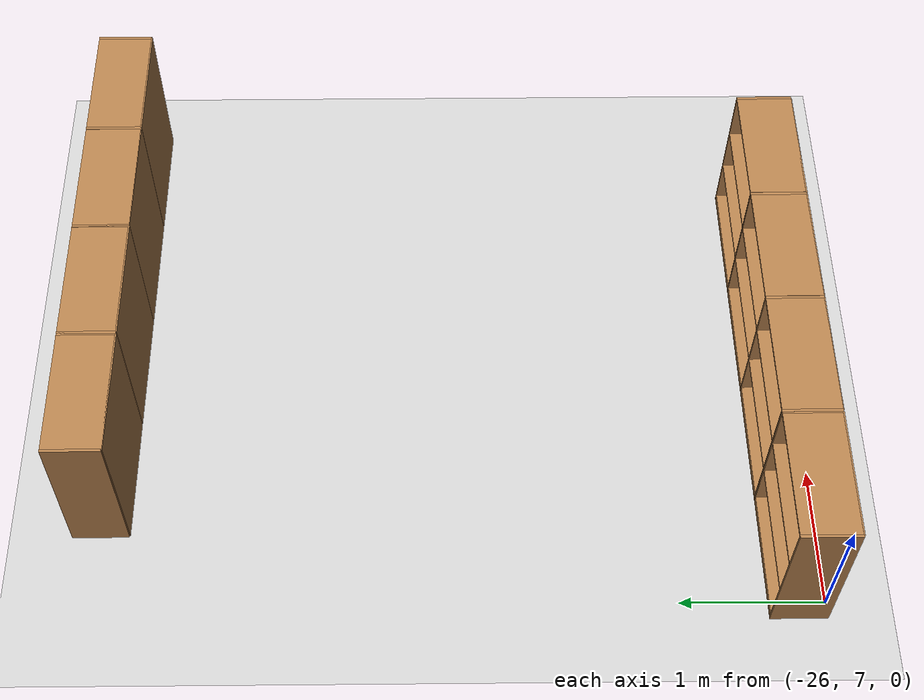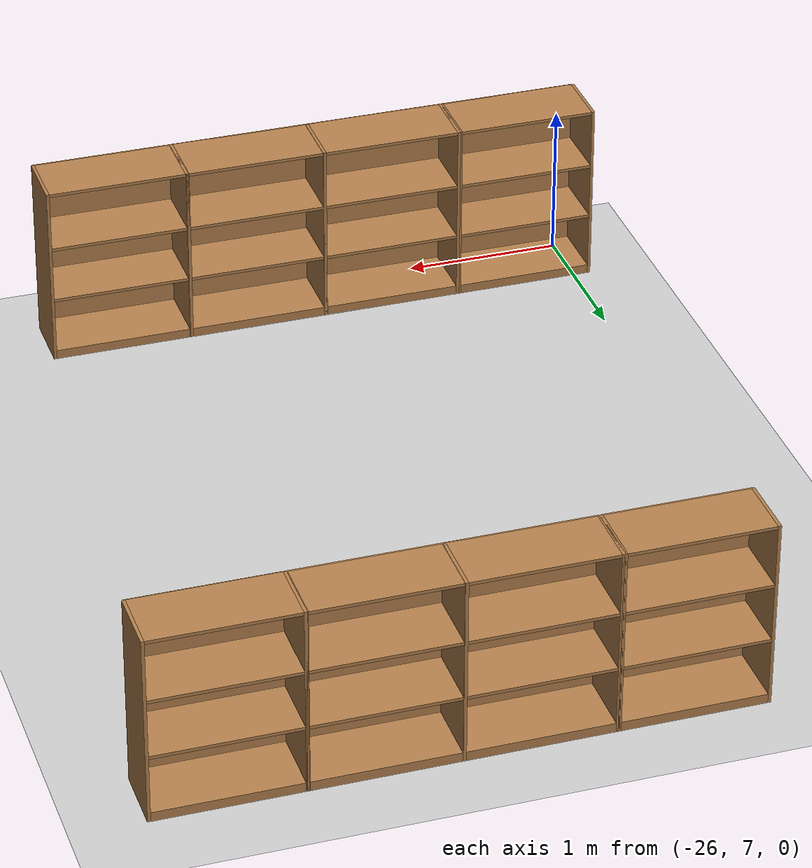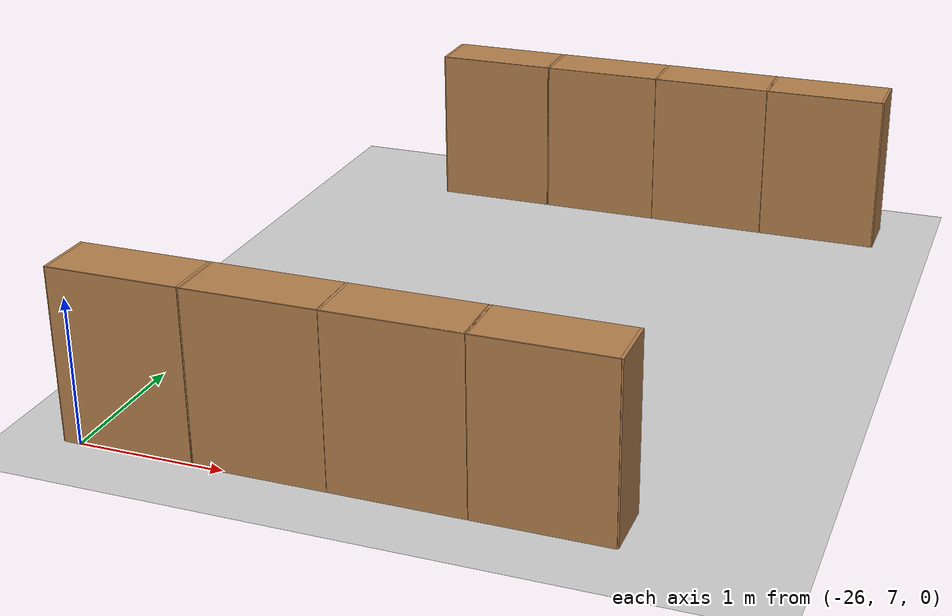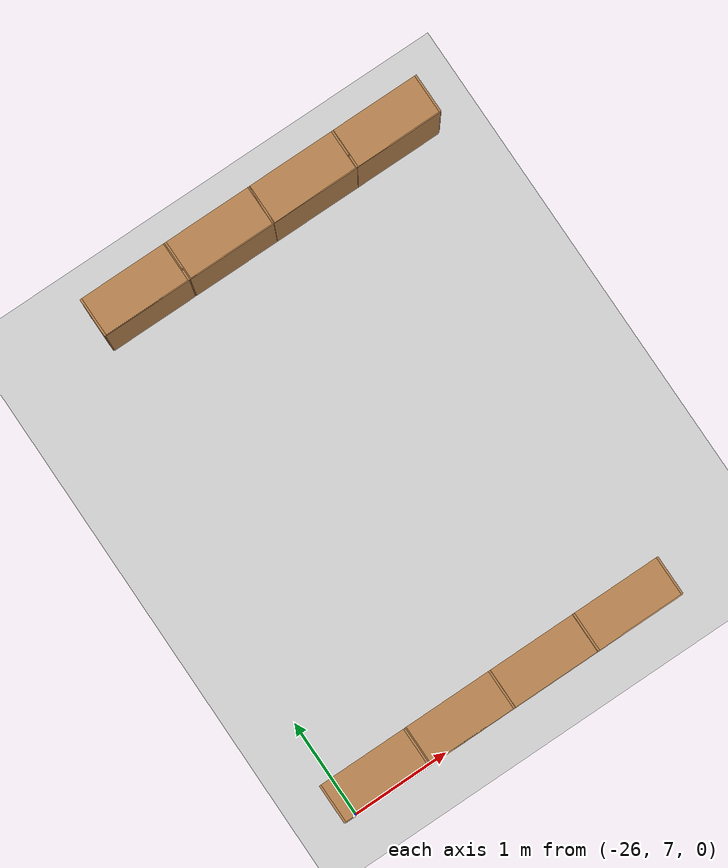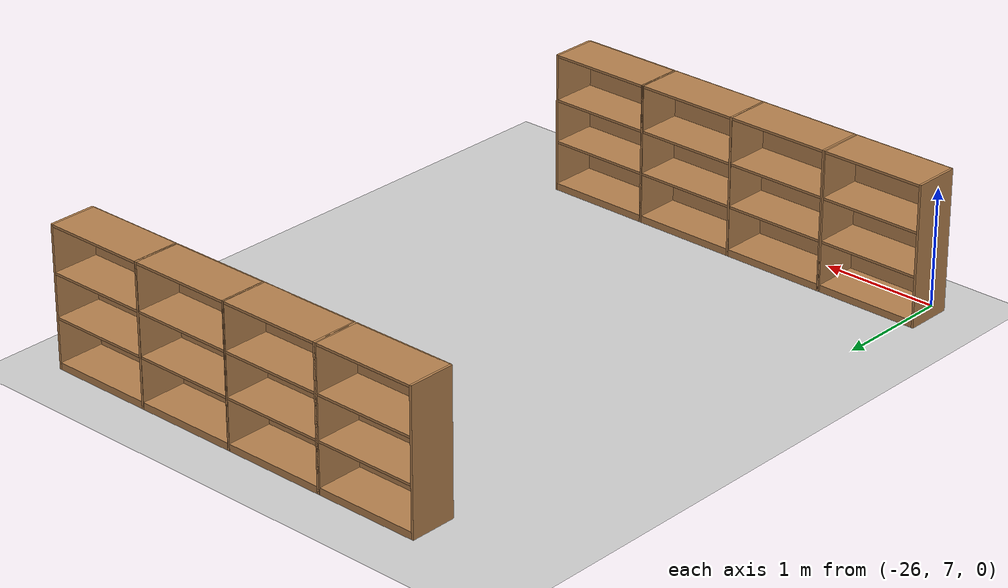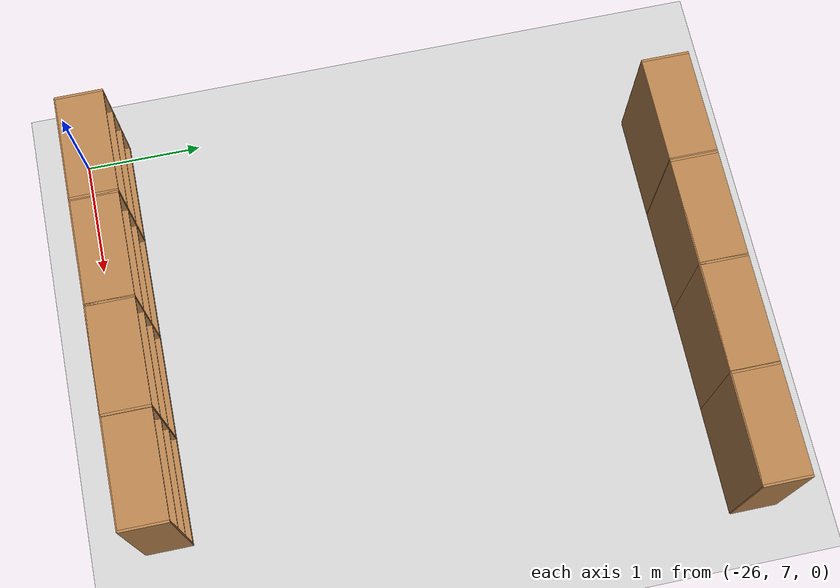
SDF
<sdf version="1.6">
 <world name="default">
  <model name="ground_plane">
   <static>1</static>
   <link name="link">
    <collision name="collision">
     <geometry><plane><normal>0 0 1</normal><size>100 100</size></plane></geometry>
     <surface><friction><ode><mu>100</mu><mu2>50</mu2></ode></friction></surface>
    </collision>
    <visual name="visual">
     <cast_shadows>0</cast_shadows>
     <geometry><plane><normal>0 0 1</normal><size>100 100</size></plane></geometry>
     <material>
      <script><uri>file://media/materials/scripts/gazebo.material</uri><name>Gazebo/Grey</name></script>
     </material>
    </visual>
   </link>
  </model>
  <model name="Bookself-4_clone_0_clone_5">
   <model name="Bookself-3">
    <model name="bookshelf_0">
     <static>1</static>
     <link name="link">
      <inertial><mass>1</mass></inertial>
      <collision name="back">
       <pose>0 0.005 0.6 0 -0 0</pose>
       <geometry><box><size>0.9 0.01 1.2</size></box></geometry>
      </collision>
      <visual name="visual1">
       <pose>0 0.005 0.6 0 -0 0</pose>
       <geometry><box><size>0.9 0.01 1.2</size></box></geometry>
       <material>
        <script><uri>file://media/materials/scripts/gazebo.material</uri><name>Gazebo/Wood</name></script>
       </material>
      </visual>
      <collision name="left_side">
       <pose>0.45 -0.195 0.6 0 -0 0</pose>
       <geometry><box><size>0.02 0.4 1.2</size></box></geometry>
      </collision>
      <visual name="visual2">
       <pose>0.45 -0.195 0.6 0 -0 0</pose>
       <geometry><box><size>0.02 0.4 1.2</size></box></geometry>
       <material>
        <script><uri>file://media/materials/scripts/gazebo.material</uri><name>Gazebo/Wood</name></script>
       </material>
      </visual>
      <collision name="right_side">
       <pose>-0.45 -0.195 0.6 0 -0 0</pose>
       <geometry><box><size>0.02 0.4 1.2</size></box></geometry>
      </collision>
      <visual name="visual3">
       <pose>-0.45 -0.195 0.6 0 -0 0</pose>
       <geometry><box><size>0.02 0.4 1.2</size></box></geometry>
       <material>
        <script><uri>file://media/materials/scripts/gazebo.material</uri><name>Gazebo/Wood</name></script>
       </material>
      </visual>
      <collision name="bottom">
       <pose>0 -0.195 0.03 0 -0 0</pose>
       <geometry><box><size>0.88 0.4 0.06</size></box></geometry>
      </collision>
      <visual name="visual4">
       <pose>0 -0.195 0.03 0 -0 0</pose>
       <geometry><box><size>0.88 0.4 0.06</size></box></geometry>
       <material>
        <script><uri>file://media/materials/scripts/gazebo.material</uri><name>Gazebo/Wood</name></script>
       </material>
      </visual>
      <collision name="top">
       <pose>0 -0.195 1.19 0 -0 0</pose>
       <geometry><box><size>0.88 0.4 0.02</size></box></geometry>
      </collision>
      <visual name="visual5">
       <pose>0 -0.195 1.19 0 -0 0</pose>
       <geometry><box><size>0.88 0.4 0.02</size></box></geometry>
       <material>
        <script><uri>file://media/materials/scripts/gazebo.material</uri><name>Gazebo/Wood</name></script>
       </material>
      </visual>
      <collision name="low_shelf">
       <pose>0 -0.195 0.43 0 -0 0</pose>
       <geometry><box><size>0.88 0.4 0.02</size></box></geometry>
      </collision>
      <visual name="visual6">
       <pose>0 -0.195 0.43 0 -0 0</pose>
       <geometry><box><size>0.88 0.4 0.02</size></box></geometry>
       <material>
        <script><uri>file://media/materials/scripts/gazebo.material</uri><name>Gazebo/Wood</name></script>
       </material>
      </visual>
      <collision name="high_shelf">
       <pose>0 -0.195 0.8 0 -0 0</pose>
       <geometry><box><size>0.88 0.4 0.02</size></box></geometry>
      </collision>
      <visual name="visual7">
       <pose>0 -0.195 0.8 0 -0 0</pose>
       <geometry><box><size>0.88 0.4 0.02</size></box></geometry>
       <material>
        <script><uri>file://media/materials/scripts/gazebo.material</uri><name>Gazebo/Wood</name></script>
       </material>
      </visual>
     </link>
     <pose>-0.903039 0 0 0 -0 0</pose>
    </model>
    <model name="bookshelf_1">
     <static>1</static>
     <link name="link">
      <inertial><mass>1</mass></inertial>
      <collision name="back">
       <pose>0 0.005 0.6 0 -0 0</pose>
       <geometry><box><size>0.9 0.01 1.2</size></box></geometry>
      </collision>
      <visual name="visual1">
       <pose>0 0.005 0.6 0 -0 0</pose>
       <geometry><box><size>0.9 0.01 1.2</size></box></geometry>
       <material>
        <script><uri>file://media/materials/scripts/gazebo.material</uri><name>Gazebo/Wood</name></script>
       </material>
      </visual>
      <collision name="left_side">
       <pose>0.45 -0.195 0.6 0 -0 0</pose>
       <geometry><box><size>0.02 0.4 1.2</size></box></geometry>
      </collision>
      <visual name="visual2">
       <pose>0.45 -0.195 0.6 0 -0 0</pose>
       <geometry><box><size>0.02 0.4 1.2</size></box></geometry>
       <material>
        <script><uri>file://media/materials/scripts/gazebo.material</uri><name>Gazebo/Wood</name></script>
       </material>
      </visual>
      <collision name="right_side">
       <pose>-0.45 -0.195 0.6 0 -0 0</pose>
       <geometry><box><size>0.02 0.4 1.2</size></box></geometry>
      </collision>
      <visual name="visual3">
       <pose>-0.45 -0.195 0.6 0 -0 0</pose>
       <geometry><box><size>0.02 0.4 1.2</size></box></geometry>
       <material>
        <script><uri>file://media/materials/scripts/gazebo.material</uri><name>Gazebo/Wood</name></script>
       </material>
      </visual>
      <collision name="bottom">
       <pose>0 -0.195 0.03 0 -0 0</pose>
       <geometry><box><size>0.88 0.4 0.06</size></box></geometry>
      </collision>
      <visual name="visual4">
       <pose>0 -0.195 0.03 0 -0 0</pose>
       <geometry><box><size>0.88 0.4 0.06</size></box></geometry>
       <material>
        <script><uri>file://media/materials/scripts/gazebo.material</uri><name>Gazebo/Wood</name></script>
       </material>
      </visual>
      <collision name="top">
       <pose>0 -0.195 1.19 0 -0 0</pose>
       <geometry><box><size>0.88 0.4 0.02</size></box></geometry>
      </collision>
      <visual name="visual5">
       <pose>0 -0.195 1.19 0 -0 0</pose>
       <geometry><box><size>0.88 0.4 0.02</size></box></geometry>
       <material>
        <script><uri>file://media/materials/scripts/gazebo.material</uri><name>Gazebo/Wood</name></script>
       </material>
      </visual>
      <collision name="low_shelf">
       <pose>0 -0.195 0.43 0 -0 0</pose>
       <geometry><box><size>0.88 0.4 0.02</size></box></geometry>
      </collision>
      <visual name="visual6">
       <pose>0 -0.195 0.43 0 -0 0</pose>
       <geometry><box><size>0.88 0.4 0.02</size></box></geometry>
       <material>
        <script><uri>file://media/materials/scripts/gazebo.material</uri><name>Gazebo/Wood</name></script>
       </material>
      </visual>
      <collision name="high_shelf">
       <pose>0 -0.195 0.8 0 -0 0</pose>
       <geometry><box><size>0.88 0.4 0.02</size></box></geometry>
      </collision>
      <visual name="visual7">
       <pose>0 -0.195 0.8 0 -0 0</pose>
       <geometry><box><size>0.88 0.4 0.02</size></box></geometry>
       <material>
        <script><uri>file://media/materials/scripts/gazebo.material</uri><name>Gazebo/Wood</name></script>
       </material>
      </visual>
     </link>
     <pose>0.000535 0 0 0 -0 0</pose>
    </model>
    <model name="bookshelf_1_clone">
     <static>1</static>
     <link name="link">
      <inertial><mass>1</mass></inertial>
      <collision name="back">
       <pose>0 0.005 0.6 0 -0 0</pose>
       <geometry><box><size>0.9 0.01 1.2</size></box></geometry>
      </collision>
      <visual name="visual1">
       <pose>0 0.005 0.6 0 -0 0</pose>
       <geometry><box><size>0.9 0.01 1.2</size></box></geometry>
       <material>
        <script><uri>file://media/materials/scripts/gazebo.material</uri><name>Gazebo/Wood</name></script>
       </material>
      </visual>
      <collision name="left_side">
       <pose>0.45 -0.195 0.6 0 -0 0</pose>
       <geometry><box><size>0.02 0.4 1.2</size></box></geometry>
      </collision>
      <visual name="visual2">
       <pose>0.45 -0.195 0.6 0 -0 0</pose>
       <geometry><box><size>0.02 0.4 1.2</size></box></geometry>
       <material>
        <script><uri>file://media/materials/scripts/gazebo.material</uri><name>Gazebo/Wood</name></script>
       </material>
      </visual>
      <collision name="right_side">
       <pose>-0.45 -0.195 0.6 0 -0 0</pose>
       <geometry><box><size>0.02 0.4 1.2</size></box></geometry>
      </collision>
      <visual name="visual3">
       <pose>-0.45 -0.195 0.6 0 -0 0</pose>
       <geometry><box><size>0.02 0.4 1.2</size></box></geometry>
       <material>
        <script><uri>file://media/materials/scripts/gazebo.material</uri><name>Gazebo/Wood</name></script>
       </material>
      </visual>
      <collision name="bottom">
       <pose>0 -0.195 0.03 0 -0 0</pose>
       <geometry><box><size>0.88 0.4 0.06</size></box></geometry>
      </collision>
      <visual name="visual4">
       <pose>0 -0.195 0.03 0 -0 0</pose>
       <geometry><box><size>0.88 0.4 0.06</size></box></geometry>
       <material>
        <script><uri>file://media/materials/scripts/gazebo.material</uri><name>Gazebo/Wood</name></script>
       </material>
      </visual>
      <collision name="top">
       <pose>0 -0.195 1.19 0 -0 0</pose>
       <geometry><box><size>0.88 0.4 0.02</size></box></geometry>
      </collision>
      <visual name="visual5">
       <pose>0 -0.195 1.19 0 -0 0</pose>
       <geometry><box><size>0.88 0.4 0.02</size></box></geometry>
       <material>
        <script><uri>file://media/materials/scripts/gazebo.material</uri><name>Gazebo/Wood</name></script>
       </material>
      </visual>
      <collision name="low_shelf">
       <pose>0 -0.195 0.43 0 -0 0</pose>
       <geometry><box><size>0.88 0.4 0.02</size></box></geometry>
      </collision>
      <visual name="visual6">
       <pose>0 -0.195 0.43 0 -0 0</pose>
       <geometry><box><size>0.88 0.4 0.02</size></box></geometry>
       <material>
        <script><uri>file://media/materials/scripts/gazebo.material</uri><name>Gazebo/Wood</name></script>
       </material>
      </visual>
      <collision name="high_shelf">
       <pose>0 -0.195 0.8 0 -0 0</pose>
       <geometry><box><size>0.88 0.4 0.02</size></box></geometry>
      </collision>
      <visual name="visual7">
       <pose>0 -0.195 0.8 0 -0 0</pose>
       <geometry><box><size>0.88 0.4 0.02</size></box></geometry>
       <material>
        <script><uri>file://media/materials/scripts/gazebo.material</uri><name>Gazebo/Wood</name></script>
       </material>
      </visual>
     </link>
     <pose>0.902502 0 0 0 -0 0</pose>
    </model>
    <static>1</static>
    <pose>-0.906894 3e-05 0 0 -0 0</pose>
   </model>
   <model name="bookshelf">
    <static>1</static>
    <link name="link">
     <inertial><mass>1</mass></inertial>
     <collision name="back">
      <pose>0 0.005 0.6 0 -0 0</pose>
      <geometry><box><size>0.9 0.01 1.2</size></box></geometry>
     </collision>
     <visual name="visual1">
      <pose>0 0.005 0.6 0 -0 0</pose>
      <geometry><box><size>0.9 0.01 1.2</size></box></geometry>
      <material>
       <script><uri>file://media/materials/scripts/gazebo.material</uri><name>Gazebo/Wood</name></script>
      </material>
     </visual>
     <collision name="left_side">
      <pose>0.45 -0.195 0.6 0 -0 0</pose>
      <geometry><box><size>0.02 0.4 1.2</size></box></geometry>
     </collision>
     <visual name="visual2">
      <pose>0.45 -0.195 0.6 0 -0 0</pose>
      <geometry><box><size>0.02 0.4 1.2</size></box></geometry>
      <material>
       <script><uri>file://media/materials/scripts/gazebo.material</uri><name>Gazebo/Wood</name></script>
      </material>
     </visual>
     <collision name="right_side">
      <pose>-0.45 -0.195 0.6 0 -0 0</pose>
      <geometry><box><size>0.02 0.4 1.2</size></box></geometry>
     </collision>
     <visual name="visual3">
      <pose>-0.45 -0.195 0.6 0 -0 0</pose>
      <geometry><box><size>0.02 0.4 1.2</size></box></geometry>
      <material>
       <script><uri>file://media/materials/scripts/gazebo.material</uri><name>Gazebo/Wood</name></script>
      </material>
     </visual>
     <collision name="bottom">
      <pose>0 -0.195 0.03 0 -0 0</pose>
      <geometry><box><size>0.88 0.4 0.06</size></box></geometry>
     </collision>
     <visual name="visual4">
      <pose>0 -0.195 0.03 0 -0 0</pose>
      <geometry><box><size>0.88 0.4 0.06</size></box></geometry>
      <material>
       <script><uri>file://media/materials/scripts/gazebo.material</uri><name>Gazebo/Wood</name></script>
      </material>
     </visual>
     <collision name="top">
      <pose>0 -0.195 1.19 0 -0 0</pose>
      <geometry><box><size>0.88 0.4 0.02</size></box></geometry>
     </collision>
     <visual name="visual5">
      <pose>0 -0.195 1.19 0 -0 0</pose>
      <geometry><box><size>0.88 0.4 0.02</size></box></geometry>
      <material>
       <script><uri>file://media/materials/scripts/gazebo.material</uri><name>Gazebo/Wood</name></script>
      </material>
     </visual>
     <collision name="low_shelf">
      <pose>0 -0.195 0.43 0 -0 0</pose>
      <geometry><box><size>0.88 0.4 0.02</size></box></geometry>
     </collision>
     <visual name="visual6">
      <pose>0 -0.195 0.43 0 -0 0</pose>
      <geometry><box><size>0.88 0.4 0.02</size></box></geometry>
      <material>
       <script><uri>file://media/materials/scripts/gazebo.material</uri><name>Gazebo/Wood</name></script>
      </material>
     </visual>
     <collision name="high_shelf">
      <pose>0 -0.195 0.8 0 -0 0</pose>
      <geometry><box><size>0.88 0.4 0.02</size></box></geometry>
     </collision>
     <visual name="visual7">
      <pose>0 -0.195 0.8 0 -0 0</pose>
      <geometry><box><size>0.88 0.4 0.02</size></box></geometry>
      <material>
       <script><uri>file://media/materials/scripts/gazebo.material</uri><name>Gazebo/Wood</name></script>
      </material>
     </visual>
    </link>
    <pose>0.906808 3e-05 0 0 -0 0</pose>
   </model>
   <static>0</static>
   <pose>-24.7512 6.99971 0 0 -0 3.14159</pose>
  </model>
  <model name="Bookself-4_clone_0_clone_5_clone">
   <model name="Bookself-3">
    <model name="bookshelf_0">
     <static>1</static>
     <link name="link">
      <inertial><mass>1</mass></inertial>
      <collision name="back">
       <pose>0 0.005 0.6 0 -0 0</pose>
       <geometry><box><size>0.9 0.01 1.2</size></box></geometry>
      </collision>
      <visual name="visual1">
       <pose>0 0.005 0.6 0 -0 0</pose>
       <geometry><box><size>0.9 0.01 1.2</size></box></geometry>
       <material>
        <script><uri>file://media/materials/scripts/gazebo.material</uri><name>Gazebo/Wood</name></script>
       </material>
      </visual>
      <collision name="left_side">
       <pose>0.45 -0.195 0.6 0 -0 0</pose>
       <geometry><box><size>0.02 0.4 1.2</size></box></geometry>
      </collision>
      <visual name="visual2">
       <pose>0.45 -0.195 0.6 0 -0 0</pose>
       <geometry><box><size>0.02 0.4 1.2</size></box></geometry>
       <material>
        <script><uri>file://media/materials/scripts/gazebo.material</uri><name>Gazebo/Wood</name></script>
       </material>
      </visual>
      <collision name="right_side">
       <pose>-0.45 -0.195 0.6 0 -0 0</pose>
       <geometry><box><size>0.02 0.4 1.2</size></box></geometry>
      </collision>
      <visual name="visual3">
       <pose>-0.45 -0.195 0.6 0 -0 0</pose>
       <geometry><box><size>0.02 0.4 1.2</size></box></geometry>
       <material>
        <script><uri>file://media/materials/scripts/gazebo.material</uri><name>Gazebo/Wood</name></script>
       </material>
      </visual>
      <collision name="bottom">
       <pose>0 -0.195 0.03 0 -0 0</pose>
       <geometry><box><size>0.88 0.4 0.06</size></box></geometry>
      </collision>
      <visual name="visual4">
       <pose>0 -0.195 0.03 0 -0 0</pose>
       <geometry><box><size>0.88 0.4 0.06</size></box></geometry>
       <material>
        <script><uri>file://media/materials/scripts/gazebo.material</uri><name>Gazebo/Wood</name></script>
       </material>
      </visual>
      <collision name="top">
       <pose>0 -0.195 1.19 0 -0 0</pose>
       <geometry><box><size>0.88 0.4 0.02</size></box></geometry>
      </collision>
      <visual name="visual5">
       <pose>0 -0.195 1.19 0 -0 0</pose>
       <geometry><box><size>0.88 0.4 0.02</size></box></geometry>
       <material>
        <script><uri>file://media/materials/scripts/gazebo.material</uri><name>Gazebo/Wood</name></script>
       </material>
      </visual>
      <collision name="low_shelf">
       <pose>0 -0.195 0.43 0 -0 0</pose>
       <geometry><box><size>0.88 0.4 0.02</size></box></geometry>
      </collision>
      <visual name="visual6">
       <pose>0 -0.195 0.43 0 -0 0</pose>
       <geometry><box><size>0.88 0.4 0.02</size></box></geometry>
       <material>
        <script><uri>file://media/materials/scripts/gazebo.material</uri><name>Gazebo/Wood</name></script>
       </material>
      </visual>
      <collision name="high_shelf">
       <pose>0 -0.195 0.8 0 -0 0</pose>
       <geometry><box><size>0.88 0.4 0.02</size></box></geometry>
      </collision>
      <visual name="visual7">
       <pose>0 -0.195 0.8 0 -0 0</pose>
       <geometry><box><size>0.88 0.4 0.02</size></box></geometry>
       <material>
        <script><uri>file://media/materials/scripts/gazebo.material</uri><name>Gazebo/Wood</name></script>
       </material>
      </visual>
     </link>
     <pose>-0.903039 0 0 0 -0 0</pose>
    </model>
    <model name="bookshelf_1">
     <static>1</static>
     <link name="link">
      <inertial><mass>1</mass></inertial>
      <collision name="back">
       <pose>0 0.005 0.6 0 -0 0</pose>
       <geometry><box><size>0.9 0.01 1.2</size></box></geometry>
      </collision>
      <visual name="visual1">
       <pose>0 0.005 0.6 0 -0 0</pose>
       <geometry><box><size>0.9 0.01 1.2</size></box></geometry>
       <material>
        <script><uri>file://media/materials/scripts/gazebo.material</uri><name>Gazebo/Wood</name></script>
       </material>
      </visual>
      <collision name="left_side">
       <pose>0.45 -0.195 0.6 0 -0 0</pose>
       <geometry><box><size>0.02 0.4 1.2</size></box></geometry>
      </collision>
      <visual name="visual2">
       <pose>0.45 -0.195 0.6 0 -0 0</pose>
       <geometry><box><size>0.02 0.4 1.2</size></box></geometry>
       <material>
        <script><uri>file://media/materials/scripts/gazebo.material</uri><name>Gazebo/Wood</name></script>
       </material>
      </visual>
      <collision name="right_side">
       <pose>-0.45 -0.195 0.6 0 -0 0</pose>
       <geometry><box><size>0.02 0.4 1.2</size></box></geometry>
      </collision>
      <visual name="visual3">
       <pose>-0.45 -0.195 0.6 0 -0 0</pose>
       <geometry><box><size>0.02 0.4 1.2</size></box></geometry>
       <material>
        <script><uri>file://media/materials/scripts/gazebo.material</uri><name>Gazebo/Wood</name></script>
       </material>
      </visual>
      <collision name="bottom">
       <pose>0 -0.195 0.03 0 -0 0</pose>
       <geometry><box><size>0.88 0.4 0.06</size></box></geometry>
      </collision>
      <visual name="visual4">
       <pose>0 -0.195 0.03 0 -0 0</pose>
       <geometry><box><size>0.88 0.4 0.06</size></box></geometry>
       <material>
        <script><uri>file://media/materials/scripts/gazebo.material</uri><name>Gazebo/Wood</name></script>
       </material>
      </visual>
      <collision name="top">
       <pose>0 -0.195 1.19 0 -0 0</pose>
       <geometry><box><size>0.88 0.4 0.02</size></box></geometry>
      </collision>
      <visual name="visual5">
       <pose>0 -0.195 1.19 0 -0 0</pose>
       <geometry><box><size>0.88 0.4 0.02</size></box></geometry>
       <material>
        <script><uri>file://media/materials/scripts/gazebo.material</uri><name>Gazebo/Wood</name></script>
       </material>
      </visual>
      <collision name="low_shelf">
       <pose>0 -0.195 0.43 0 -0 0</pose>
       <geometry><box><size>0.88 0.4 0.02</size></box></geometry>
      </collision>
      <visual name="visual6">
       <pose>0 -0.195 0.43 0 -0 0</pose>
       <geometry><box><size>0.88 0.4 0.02</size></box></geometry>
       <material>
        <script><uri>file://media/materials/scripts/gazebo.material</uri><name>Gazebo/Wood</name></script>
       </material>
      </visual>
      <collision name="high_shelf">
       <pose>0 -0.195 0.8 0 -0 0</pose>
       <geometry><box><size>0.88 0.4 0.02</size></box></geometry>
      </collision>
      <visual name="visual7">
       <pose>0 -0.195 0.8 0 -0 0</pose>
       <geometry><box><size>0.88 0.4 0.02</size></box></geometry>
       <material>
        <script><uri>file://media/materials/scripts/gazebo.material</uri><name>Gazebo/Wood</name></script>
       </material>
      </visual>
     </link>
     <pose>0.000535 0 0 0 -0 0</pose>
    </model>
    <model name="bookshelf_1_clone">
     <static>1</static>
     <link name="link">
      <inertial><mass>1</mass></inertial>
      <collision name="back">
       <pose>0 0.005 0.6 0 -0 0</pose>
       <geometry><box><size>0.9 0.01 1.2</size></box></geometry>
      </collision>
      <visual name="visual1">
       <pose>0 0.005 0.6 0 -0 0</pose>
       <geometry><box><size>0.9 0.01 1.2</size></box></geometry>
       <material>
        <script><uri>file://media/materials/scripts/gazebo.material</uri><name>Gazebo/Wood</name></script>
       </material>
      </visual>
      <collision name="left_side">
       <pose>0.45 -0.195 0.6 0 -0 0</pose>
       <geometry><box><size>0.02 0.4 1.2</size></box></geometry>
      </collision>
      <visual name="visual2">
       <pose>0.45 -0.195 0.6 0 -0 0</pose>
       <geometry><box><size>0.02 0.4 1.2</size></box></geometry>
       <material>
        <script><uri>file://media/materials/scripts/gazebo.material</uri><name>Gazebo/Wood</name></script>
       </material>
      </visual>
      <collision name="right_side">
       <pose>-0.45 -0.195 0.6 0 -0 0</pose>
       <geometry><box><size>0.02 0.4 1.2</size></box></geometry>
      </collision>
      <visual name="visual3">
       <pose>-0.45 -0.195 0.6 0 -0 0</pose>
       <geometry><box><size>0.02 0.4 1.2</size></box></geometry>
       <material>
        <script><uri>file://media/materials/scripts/gazebo.material</uri><name>Gazebo/Wood</name></script>
       </material>
      </visual>
      <collision name="bottom">
       <pose>0 -0.195 0.03 0 -0 0</pose>
       <geometry><box><size>0.88 0.4 0.06</size></box></geometry>
      </collision>
      <visual name="visual4">
       <pose>0 -0.195 0.03 0 -0 0</pose>
       <geometry><box><size>0.88 0.4 0.06</size></box></geometry>
       <material>
        <script><uri>file://media/materials/scripts/gazebo.material</uri><name>Gazebo/Wood</name></script>
       </material>
      </visual>
      <collision name="top">
       <pose>0 -0.195 1.19 0 -0 0</pose>
       <geometry><box><size>0.88 0.4 0.02</size></box></geometry>
      </collision>
      <visual name="visual5">
       <pose>0 -0.195 1.19 0 -0 0</pose>
       <geometry><box><size>0.88 0.4 0.02</size></box></geometry>
       <material>
        <script><uri>file://media/materials/scripts/gazebo.material</uri><name>Gazebo/Wood</name></script>
       </material>
      </visual>
      <collision name="low_shelf">
       <pose>0 -0.195 0.43 0 -0 0</pose>
       <geometry><box><size>0.88 0.4 0.02</size></box></geometry>
      </collision>
      <visual name="visual6">
       <pose>0 -0.195 0.43 0 -0 0</pose>
       <geometry><box><size>0.88 0.4 0.02</size></box></geometry>
       <material>
        <script><uri>file://media/materials/scripts/gazebo.material</uri><name>Gazebo/Wood</name></script>
       </material>
      </visual>
      <collision name="high_shelf">
       <pose>0 -0.195 0.8 0 -0 0</pose>
       <geometry><box><size>0.88 0.4 0.02</size></box></geometry>
      </collision>
      <visual name="visual7">
       <pose>0 -0.195 0.8 0 -0 0</pose>
       <geometry><box><size>0.88 0.4 0.02</size></box></geometry>
       <material>
        <script><uri>file://media/materials/scripts/gazebo.material</uri><name>Gazebo/Wood</name></script>
       </material>
      </visual>
     </link>
     <pose>0.902502 0 0 0 -0 0</pose>
    </model>
    <static>1</static>
    <pose>-0.906894 3e-05 0 0 -0 0</pose>
   </model>
   <model name="bookshelf">
    <static>1</static>
    <link name="link">
     <inertial><mass>1</mass></inertial>
     <collision name="back">
      <pose>0 0.005 0.6 0 -0 0</pose>
      <geometry><box><size>0.9 0.01 1.2</size></box></geometry>
     </collision>
     <visual name="visual1">
      <pose>0 0.005 0.6 0 -0 0</pose>
      <geometry><box><size>0.9 0.01 1.2</size></box></geometry>
      <material>
       <script><uri>file://media/materials/scripts/gazebo.material</uri><name>Gazebo/Wood</name></script>
      </material>
     </visual>
     <collision name="left_side">
      <pose>0.45 -0.195 0.6 0 -0 0</pose>
      <geometry><box><size>0.02 0.4 1.2</size></box></geometry>
     </collision>
     <visual name="visual2">
      <pose>0.45 -0.195 0.6 0 -0 0</pose>
      <geometry><box><size>0.02 0.4 1.2</size></box></geometry>
      <material>
       <script><uri>file://media/materials/scripts/gazebo.material</uri><name>Gazebo/Wood</name></script>
      </material>
     </visual>
     <collision name="right_side">
      <pose>-0.45 -0.195 0.6 0 -0 0</pose>
      <geometry><box><size>0.02 0.4 1.2</size></box></geometry>
     </collision>
     <visual name="visual3">
      <pose>-0.45 -0.195 0.6 0 -0 0</pose>
      <geometry><box><size>0.02 0.4 1.2</size></box></geometry>
      <material>
       <script><uri>file://media/materials/scripts/gazebo.material</uri><name>Gazebo/Wood</name></script>
      </material>
     </visual>
     <collision name="bottom">
      <pose>0 -0.195 0.03 0 -0 0</pose>
      <geometry><box><size>0.88 0.4 0.06</size></box></geometry>
     </collision>
     <visual name="visual4">
      <pose>0 -0.195 0.03 0 -0 0</pose>
      <geometry><box><size>0.88 0.4 0.06</size></box></geometry>
      <material>
       <script><uri>file://media/materials/scripts/gazebo.material</uri><name>Gazebo/Wood</name></script>
      </material>
     </visual>
     <collision name="top">
      <pose>0 -0.195 1.19 0 -0 0</pose>
      <geometry><box><size>0.88 0.4 0.02</size></box></geometry>
     </collision>
     <visual name="visual5">
      <pose>0 -0.195 1.19 0 -0 0</pose>
      <geometry><box><size>0.88 0.4 0.02</size></box></geometry>
      <material>
       <script><uri>file://media/materials/scripts/gazebo.material</uri><name>Gazebo/Wood</name></script>
      </material>
     </visual>
     <collision name="low_shelf">
      <pose>0 -0.195 0.43 0 -0 0</pose>
      <geometry><box><size>0.88 0.4 0.02</size></box></geometry>
     </collision>
     <visual name="visual6">
      <pose>0 -0.195 0.43 0 -0 0</pose>
      <geometry><box><size>0.88 0.4 0.02</size></box></geometry>
      <material>
       <script><uri>file://media/materials/scripts/gazebo.material</uri><name>Gazebo/Wood</name></script>
      </material>
     </visual>
     <collision name="high_shelf">
      <pose>0 -0.195 0.8 0 -0 0</pose>
      <geometry><box><size>0.88 0.4 0.02</size></box></geometry>
     </collision>
     <visual name="visual7">
      <pose>0 -0.195 0.8 0 -0 0</pose>
      <geometry><box><size>0.88 0.4 0.02</size></box></geometry>
      <material>
       <script><uri>file://media/materials/scripts/gazebo.material</uri><name>Gazebo/Wood</name></script>
      </material>
     </visual>
    </link>
    <pose>0.906808 3e-05 0 0 -0 0</pose>
   </model>
   <static>0</static>
   <pose>-24.0992 11.7948 0 0 -0 3.14159</pose>
  </model>
 </world>
</sdf>
